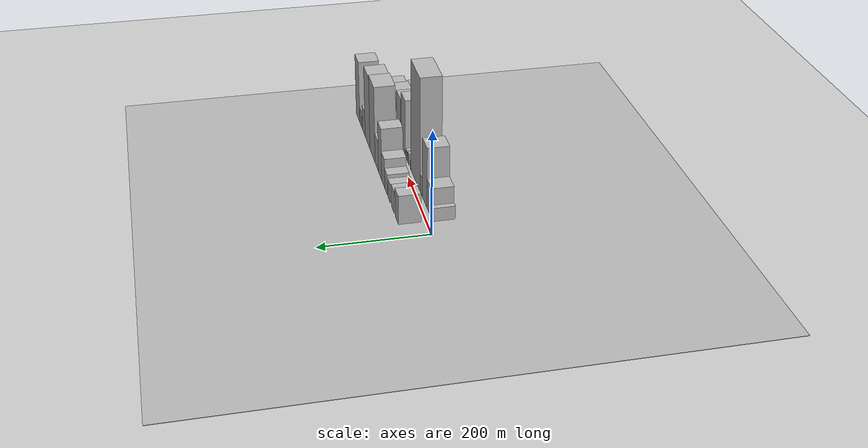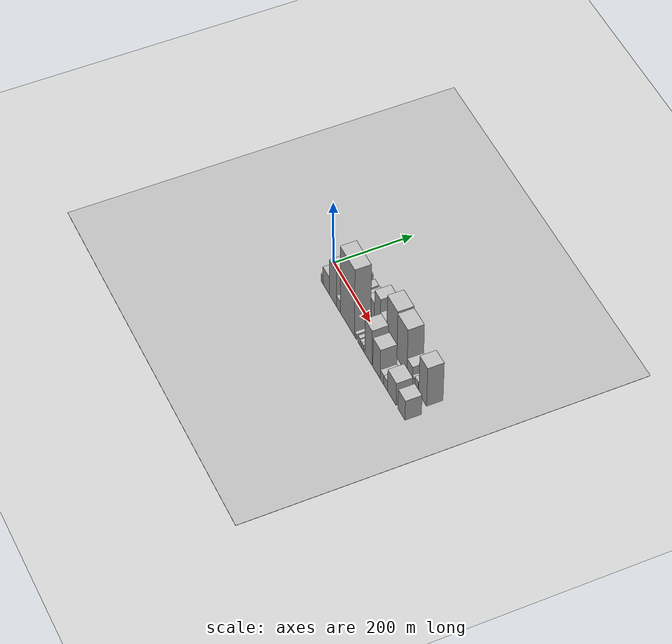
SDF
<?xml version="1.0" encoding="utf-8"?>

<sdf version="1.6">

   <world name="default">

      <gui fullscreen="0">

         <camera name="user_camera">

            <pose>-15 0 4.57585 0 0 0</pose>

            <view_controller>orbit</view_controller>

         </camera>

      </gui>

      <scene>

         <sky>

           <clouds>

             <speed>12</speed>

           </clouds>

         </sky>

         <ambient>0.4 0.4 0.4 1</ambient>

         <background>0.7 0.7 0.7 1</background>

         <shadows>1</shadows>

      </scene>

      <gravity>0 0 -9.8066</gravity>

      <magnetic_field>6e-06 2.3e-05 -4.2e-05</magnetic_field>

      <physics default="0" name="default_physics" type="ode">

         <ode>

            <solver>

               <type>quick</type>

               <iters>10</iters>

               <sor>1.0</sor>

               <use_dynamic_moi_rescaling>0</use_dynamic_moi_rescaling>

            </solver>

            <constraints>

               <cfm>0</cfm>

               <erp>0.2</erp>

               <contact_max_correcting_vel>100</contact_max_correcting_vel>

               <contact_surface_layer>0.001</contact_surface_layer>

            </constraints>

         </ode>

         <max_step_size>0.004</max_step_size>

         <real_time_factor>1</real_time_factor>

         <real_time_update_rate>250</real_time_update_rate>

      </physics>

      <light name="sun" type="directional">

         <cast_shadows>1</cast_shadows>

         <pose>0 0 10 0 0 0</pose>

         <diffuse>0.8 0.8 0.8 1</diffuse>

         <specular>0.2 0.2 0.2 1</specular>

         <attenuation>

            <range>1000</range>

            <constant>0.9</constant>

            <linear>0.01</linear>

            <quadratic>0.001</quadratic>

         </attenuation>

         <direction>-0.5 0.1 -0.9</direction>

      </light>

      <include>

         <name>ground_plane_1</name>

         <uri>model://HANNAS_ground_plane</uri>

         <pose>0 0 0  0 0 0</pose>

      </include>

      <include>

         <name>ground_plane_2</name>

         <uri>model://HANNAS_ground_plane</uri>

         <pose>100 0 0  0 0 0</pose>

      </include>

      <model name="building_1">

         <static>1</static>

         <pose frame="">57.4653 30.0000 0 0.000000 0.000000 1.570796</pose>

         <link name="link">

            <pose frame="">0 0 28.50 0 0 0</pose>

            <collision name="collision">

               <geometry>

                  <box>

                     <size>40.0000 28.9307 57.0000</size>

                  </box>

               </geometry>

               <max_contacts>10</max_contacts>

               <surface>

                  <contact>

                     <ode/>

                  </contact>

                  <bounce/>

                  <friction>

                     <torsional>

                        <ode/>

                     </torsional>

                     <ode/>

                  </friction>

               </surface>

            </collision>

            <visual name="visual">

               <cast_shadows>0</cast_shadows>

               <geometry>

                  <box>

                     <size>40.0000 28.9307 57.0000</size>

                  </box>

               </geometry>

               <material>

                  <script>

                     <uri>model://HANNAS_wall/materials/scripts</uri>

                     <uri>model://HANNAS_wall/materials/textures</uri>

                     <name>vrc/HANNAS_wall</name>

                  </script>

               </material>

            </visual>

            <self_collide>0</self_collide>

            <enable_wind>0</enable_wind>

            <kinematic>0</kinematic>

         </link>

      </model>

      <model name="building_2">

         <static>1</static>

         <pose frame="">93.8276 30.0000 0 0.000000 0.000000 1.570796</pose>

         <link name="link">

            <pose frame="">0 0 22.50 0 0 0</pose>

            <collision name="collision">

               <geometry>

                  <box>

                     <size>40.0000 25.7937 45.0000</size>

                  </box>

               </geometry>

               <max_contacts>10</max_contacts>

               <surface>

                  <contact>

                     <ode/>

                  </contact>

                  <bounce/>

                  <friction>

                     <torsional>

                        <ode/>

                     </torsional>

                     <ode/>

                  </friction>

               </surface>

            </collision>

            <visual name="visual">

               <cast_shadows>0</cast_shadows>

               <geometry>

                  <box>

                     <size>40.0000 25.7937 45.0000</size>

                  </box>

               </geometry>

               <material>

                  <script>

                     <uri>model://HANNAS_wall/materials/scripts</uri>

                     <uri>model://HANNAS_wall/materials/textures</uri>

                     <name>vrc/HANNAS_wall</name>

                  </script>

               </material>

            </visual>

            <self_collide>0</self_collide>

            <enable_wind>0</enable_wind>

            <kinematic>0</kinematic>

         </link>

      </model>

      <model name="building_3">

         <static>1</static>

         <pose frame="">127.2322 30.0000 0 0.000000 0.000000 1.570796</pose>

         <link name="link">

            <pose frame="">0 0 19.50 0 0 0</pose>

            <collision name="collision">

               <geometry>

                  <box>

                     <size>40.0000 21.0156 39.0000</size>

                  </box>

               </geometry>

               <max_contacts>10</max_contacts>

               <surface>

                  <contact>

                     <ode/>

                  </contact>

                  <bounce/>

                  <friction>

                     <torsional>

                        <ode/>

                     </torsional>

                     <ode/>

                  </friction>

               </surface>

            </collision>

            <visual name="visual">

               <cast_shadows>0</cast_shadows>

               <geometry>

                  <box>

                     <size>40.0000 21.0156 39.0000</size>

                  </box>

               </geometry>

               <material>

                  <script>

                     <uri>model://HANNAS_wall/materials/scripts</uri>

                     <uri>model://HANNAS_wall/materials/textures</uri>

                     <name>vrc/HANNAS_wall</name>

                  </script>

               </material>

            </visual>

            <self_collide>0</self_collide>

            <enable_wind>0</enable_wind>

            <kinematic>0</kinematic>

         </link>

      </model>

      <model name="building_4">

         <static>1</static>

         <pose frame="">157.1535 30.0000 0 0.000000 0.000000 1.570796</pose>

         <link name="link">

            <pose frame="">0 0 21.00 0 0 0</pose>

            <collision name="collision">

               <geometry>

                  <box>

                     <size>40.0000 24.8269 42.0000</size>

                  </box>

               </geometry>

               <max_contacts>10</max_contacts>

               <surface>

                  <contact>

                     <ode/>

                  </contact>

                  <bounce/>

                  <friction>

                     <torsional>

                        <ode/>

                     </torsional>

                     <ode/>

                  </friction>

               </surface>

            </collision>

            <visual name="visual">

               <cast_shadows>0</cast_shadows>

               <geometry>

                  <box>

                     <size>40.0000 24.8269 42.0000</size>

                  </box>

               </geometry>

               <material>

                  <script>

                     <uri>model://HANNAS_wall/materials/scripts</uri>

                     <uri>model://HANNAS_wall/materials/textures</uri>

                     <name>vrc/HANNAS_wall</name>

                  </script>

               </material>

            </visual>

            <self_collide>0</self_collide>

            <enable_wind>0</enable_wind>

            <kinematic>0</kinematic>

         </link>

      </model>

      <model name="building_5">

         <static>1</static>

         <pose frame="">184.8793 30.0000 0 0.000000 0.000000 1.570796</pose>

         <link name="link">

            <pose frame="">0 0 30.00 0 0 0</pose>

            <collision name="collision">

               <geometry>

                  <box>

                     <size>40.0000 30.6247 60.0000</size>

                  </box>

               </geometry>

               <max_contacts>10</max_contacts>

               <surface>

                  <contact>

                     <ode/>

                  </contact>

                  <bounce/>

                  <friction>

                     <torsional>

                        <ode/>

                     </torsional>

                     <ode/>

                  </friction>

               </surface>

            </collision>

            <visual name="visual">

               <cast_shadows>0</cast_shadows>

               <geometry>

                  <box>

                     <size>40.0000 30.6247 60.0000</size>

                  </box>

               </geometry>

               <material>

                  <script>

                     <uri>model://HANNAS_wall/materials/scripts</uri>

                     <uri>model://HANNAS_wall/materials/textures</uri>

                     <name>vrc/HANNAS_wall</name>

                  </script>

               </material>

            </visual>

            <self_collide>0</self_collide>

            <enable_wind>0</enable_wind>

            <kinematic>0</kinematic>

         </link>

      </model>

      <model name="building_6">

         <static>1</static>

         <pose frame="">215.9763 30.0000 0 0.000000 0.000000 1.570796</pose>

         <link name="link">

            <pose frame="">0 0 52.50 0 0 0</pose>

            <collision name="collision">

               <geometry>

                  <box>

                     <size>40.0000 31.5693 105.0000</size>

                  </box>

               </geometry>

               <max_contacts>10</max_contacts>

               <surface>

                  <contact>

                     <ode/>

                  </contact>

                  <bounce/>

                  <friction>

                     <torsional>

                        <ode/>

                     </torsional>

                     <ode/>

                  </friction>

               </surface>

            </collision>

            <visual name="visual">

               <cast_shadows>0</cast_shadows>

               <geometry>

                  <box>

                     <size>40.0000 31.5693 105.0000</size>

                  </box>

               </geometry>

               <material>

                  <script>

                     <uri>model://HANNAS_wall/materials/scripts</uri>

                     <uri>model://HANNAS_wall/materials/textures</uri>

                     <name>vrc/HANNAS_wall</name>

                  </script>

               </material>

            </visual>

            <self_collide>0</self_collide>

            <enable_wind>0</enable_wind>

            <kinematic>0</kinematic>

         </link>

      </model>

      <model name="building_7">

         <static>1</static>

         <pose frame="">248.9823 30.0000 0 0.000000 0.000000 1.570796</pose>

         <link name="link">

            <pose frame="">0 0 31.50 0 0 0</pose>

            <collision name="collision">

               <geometry>

                  <box>

                     <size>40.0000 34.4428 63.0000</size>

                  </box>

               </geometry>

               <max_contacts>10</max_contacts>

               <surface>

                  <contact>

                     <ode/>

                  </contact>

                  <bounce/>

                  <friction>

                     <torsional>

                        <ode/>

                     </torsional>

                     <ode/>

                  </friction>

               </surface>

            </collision>

            <visual name="visual">

               <cast_shadows>0</cast_shadows>

               <geometry>

                  <box>

                     <size>40.0000 34.4428 63.0000</size>

                  </box>

               </geometry>

               <material>

                  <script>

                     <uri>model://HANNAS_wall/materials/scripts</uri>

                     <uri>model://HANNAS_wall/materials/textures</uri>

                     <name>vrc/HANNAS_wall</name>

                  </script>

               </material>

            </visual>

            <self_collide>0</self_collide>

            <enable_wind>0</enable_wind>

            <kinematic>0</kinematic>

         </link>

      </model>

      <model name="building_8">

         <static>1</static>

         <pose frame="">292.9876 30.0000 0 0.000000 0.000000 1.570796</pose>

         <link name="link">

            <pose frame="">0 0 78.00 0 0 0</pose>

            <collision name="collision">

               <geometry>

                  <box>

                     <size>40.0000 53.5677 156.0000</size>

                  </box>

               </geometry>

               <max_contacts>10</max_contacts>

               <surface>

                  <contact>

                     <ode/>

                  </contact>

                  <bounce/>

                  <friction>

                     <torsional>

                        <ode/>

                     </torsional>

                     <ode/>

                  </friction>

               </surface>

            </collision>

            <visual name="visual">

               <cast_shadows>0</cast_shadows>

               <geometry>

                  <box>

                     <size>40.0000 53.5677 156.0000</size>

                  </box>

               </geometry>

               <material>

                  <script>

                     <uri>model://HANNAS_wall/materials/scripts</uri>

                     <uri>model://HANNAS_wall/materials/textures</uri>

                     <name>vrc/HANNAS_wall</name>

                  </script>

               </material>

            </visual>

            <self_collide>0</self_collide>

            <enable_wind>0</enable_wind>

            <kinematic>0</kinematic>

         </link>

      </model>

      <model name="building_9">

         <static>1</static>

         <pose frame="">346.0546 30.0000 0 0.000000 0.000000 1.570796</pose>

         <link name="link">

            <pose frame="">0 0 75.00 0 0 0</pose>

            <collision name="collision">

               <geometry>

                  <box>

                     <size>40.0000 52.5664 150.0000</size>

                  </box>

               </geometry>

               <max_contacts>10</max_contacts>

               <surface>

                  <contact>

                     <ode/>

                  </contact>

                  <bounce/>

                  <friction>

                     <torsional>

                        <ode/>

                     </torsional>

                     <ode/>

                  </friction>

               </surface>

            </collision>

            <visual name="visual">

               <cast_shadows>0</cast_shadows>

               <geometry>

                  <box>

                     <size>40.0000 52.5664 150.0000</size>

                  </box>

               </geometry>

               <material>

                  <script>

                     <uri>model://HANNAS_wall/materials/scripts</uri>

                     <uri>model://HANNAS_wall/materials/textures</uri>

                     <name>vrc/HANNAS_wall</name>

                  </script>

               </material>

            </visual>

            <self_collide>0</self_collide>

            <enable_wind>0</enable_wind>

            <kinematic>0</kinematic>

         </link>

      </model>

      <model name="building_10">

         <static>1</static>

         <pose frame="">386.1400 30.0000 0 0.000000 0.000000 1.570796</pose>

         <link name="link">

            <pose frame="">0 0 27.00 0 0 0</pose>

            <collision name="collision">

               <geometry>

                  <box>

                     <size>40.0000 27.6044 54.0000</size>

                  </box>

               </geometry>

               <max_contacts>10</max_contacts>

               <surface>

                  <contact>

                     <ode/>

                  </contact>

                  <bounce/>

                  <friction>

                     <torsional>

                        <ode/>

                     </torsional>

                     <ode/>

                  </friction>

               </surface>

            </collision>

            <visual name="visual">

               <cast_shadows>0</cast_shadows>

               <geometry>

                  <box>

                     <size>40.0000 27.6044 54.0000</size>

                  </box>

               </geometry>

               <material>

                  <script>

                     <uri>model://HANNAS_wall/materials/scripts</uri>

                     <uri>model://HANNAS_wall/materials/textures</uri>

                     <name>vrc/HANNAS_wall</name>

                  </script>

               </material>

            </visual>

            <self_collide>0</self_collide>

            <enable_wind>0</enable_wind>

            <kinematic>0</kinematic>

         </link>

      </model>

      <model name="building_11">

         <static>1</static>

         <pose frame="">405.8643 30.0000 0 0.000000 0.000000 1.570796</pose>

         <link name="link">

            <pose frame="">0 0 13.50 0 0 0</pose>

            <collision name="collision">

               <geometry>

                  <box>

                     <size>40.0000 11.8440 27.0000</size>

                  </box>

               </geometry>

               <max_contacts>10</max_contacts>

               <surface>

                  <contact>

                     <ode/>

                  </contact>

                  <bounce/>

                  <friction>

                     <torsional>

                        <ode/>

                     </torsional>

                     <ode/>

                  </friction>

               </surface>

            </collision>

            <visual name="visual">

               <cast_shadows>0</cast_shadows>

               <geometry>

                  <box>

                     <size>40.0000 11.8440 27.0000</size>

                  </box>

               </geometry>

               <material>

                  <script>

                     <uri>model://HANNAS_wall/materials/scripts</uri>

                     <uri>model://HANNAS_wall/materials/textures</uri>

                     <name>vrc/HANNAS_wall</name>

                  </script>

               </material>

            </visual>

            <self_collide>0</self_collide>

            <enable_wind>0</enable_wind>

            <kinematic>0</kinematic>

         </link>

      </model>

      <model name="building_12">

         <static>1</static>

         <pose frame="">421.0274 30.0000 0 0.000000 0.000000 1.570796</pose>

         <link name="link">

            <pose frame="">0 0 18.00 0 0 0</pose>

            <collision name="collision">

               <geometry>

                  <box>

                     <size>40.0000 18.4822 36.0000</size>

                  </box>

               </geometry>

               <max_contacts>10</max_contacts>

               <surface>

                  <contact>

                     <ode/>

                  </contact>

                  <bounce/>

                  <friction>

                     <torsional>

                        <ode/>

                     </torsional>

                     <ode/>

                  </friction>

               </surface>

            </collision>

            <visual name="visual">

               <cast_shadows>0</cast_shadows>

               <geometry>

                  <box>

                     <size>40.0000 18.4822 36.0000</size>

                  </box>

               </geometry>

               <material>

                  <script>

                     <uri>model://HANNAS_wall/materials/scripts</uri>

                     <uri>model://HANNAS_wall/materials/textures</uri>

                     <name>vrc/HANNAS_wall</name>

                  </script>

               </material>

            </visual>

            <self_collide>0</self_collide>

            <enable_wind>0</enable_wind>

            <kinematic>0</kinematic>

         </link>

      </model>

      <model name="building_13">

         <static>1</static>

         <pose frame="">453.2611 30.0000 0 0.000000 0.000000 1.570796</pose>

         <link name="link">

            <pose frame="">0 0 64.50 0 0 0</pose>

            <collision name="collision">

               <geometry>

                  <box>

                     <size>40.0000 39.9852 129.0000</size>

                  </box>

               </geometry>

               <max_contacts>10</max_contacts>

               <surface>

                  <contact>

                     <ode/>

                  </contact>

                  <bounce/>

                  <friction>

                     <torsional>

                        <ode/>

                     </torsional>

                     <ode/>

                  </friction>

               </surface>

            </collision>

            <visual name="visual">

               <cast_shadows>0</cast_shadows>

               <geometry>

                  <box>

                     <size>40.0000 39.9852 129.0000</size>

                  </box>

               </geometry>

               <material>

                  <script>

                     <uri>model://HANNAS_wall/materials/scripts</uri>

                     <uri>model://HANNAS_wall/materials/textures</uri>

                     <name>vrc/HANNAS_wall</name>

                  </script>

               </material>

            </visual>

            <self_collide>0</self_collide>

            <enable_wind>0</enable_wind>

            <kinematic>0</kinematic>

         </link>

      </model>

      <model name="building_14">

         <static>1</static>

         <pose frame="">45.4942 -30.0000 0 0.000000 0.000000 1.570796</pose>

         <link name="link">

            <pose frame="">0 0 13.50 0 0 0</pose>

            <collision name="collision">

               <geometry>

                  <box>

                     <size>40.0000 10.9884 27.0000</size>

                  </box>

               </geometry>

               <max_contacts>10</max_contacts>

               <surface>

                  <contact>

                     <ode/>

                  </contact>

                  <bounce/>

                  <friction>

                     <torsional>

                        <ode/>

                     </torsional>

                     <ode/>

                  </friction>

               </surface>

            </collision>

            <visual name="visual">

               <cast_shadows>0</cast_shadows>

               <geometry>

                  <box>

                     <size>40.0000 10.9884 27.0000</size>

                  </box>

               </geometry>

               <material>

                  <script>

                     <uri>model://HANNAS_wall/materials/scripts</uri>

                     <uri>model://HANNAS_wall/materials/textures</uri>

                     <name>vrc/HANNAS_wall</name>

                  </script>

               </material>

            </visual>

            <self_collide>0</self_collide>

            <enable_wind>0</enable_wind>

            <kinematic>0</kinematic>

         </link>

      </model>

      <model name="building_15">

         <static>1</static>

         <pose frame="">68.7588 -30.0000 0 0.000000 0.000000 1.570796</pose>

         <link name="link">

            <pose frame="">0 0 30.00 0 0 0</pose>

            <collision name="collision">

               <geometry>

                  <box>

                     <size>40.0000 35.5408 60.0000</size>

                  </box>

               </geometry>

               <max_contacts>10</max_contacts>

               <surface>

                  <contact>

                     <ode/>

                  </contact>

                  <bounce/>

                  <friction>

                     <torsional>

                        <ode/>

                     </torsional>

                     <ode/>

                  </friction>

               </surface>

            </collision>

            <visual name="visual">

               <cast_shadows>0</cast_shadows>

               <geometry>

                  <box>

                     <size>40.0000 35.5408 60.0000</size>

                  </box>

               </geometry>

               <material>

                  <script>

                     <uri>model://HANNAS_wall/materials/scripts</uri>

                     <uri>model://HANNAS_wall/materials/textures</uri>

                     <name>vrc/HANNAS_wall</name>

                  </script>

               </material>

            </visual>

            <self_collide>0</self_collide>

            <enable_wind>0</enable_wind>

            <kinematic>0</kinematic>

         </link>

      </model>

      <model name="building_16">

         <static>1</static>

         <pose frame="">106.2109 -30.0000 0 0.000000 0.000000 1.570796</pose>

         <link name="link">

            <pose frame="">0 0 60.00 0 0 0</pose>

            <collision name="collision">

               <geometry>

                  <box>

                     <size>40.0000 39.3634 120.0000</size>

                  </box>

               </geometry>

               <max_contacts>10</max_contacts>

               <surface>

                  <contact>

                     <ode/>

                  </contact>

                  <bounce/>

                  <friction>

                     <torsional>

                        <ode/>

                     </torsional>

                     <ode/>

                  </friction>

               </surface>

            </collision>

            <visual name="visual">

               <cast_shadows>0</cast_shadows>

               <geometry>

                  <box>

                     <size>40.0000 39.3634 120.0000</size>

                  </box>

               </geometry>

               <material>

                  <script>

                     <uri>model://HANNAS_wall/materials/scripts</uri>

                     <uri>model://HANNAS_wall/materials/textures</uri>

                     <name>vrc/HANNAS_wall</name>

                  </script>

               </material>

            </visual>

            <self_collide>0</self_collide>

            <enable_wind>0</enable_wind>

            <kinematic>0</kinematic>

         </link>

      </model>

      <model name="building_17">

         <static>1</static>

         <pose frame="">136.2057 -30.0000 0 0.000000 0.000000 1.570796</pose>

         <link name="link">

            <pose frame="">0 0 19.50 0 0 0</pose>

            <collision name="collision">

               <geometry>

                  <box>

                     <size>40.0000 20.6261 39.0000</size>

                  </box>

               </geometry>

               <max_contacts>10</max_contacts>

               <surface>

                  <contact>

                     <ode/>

                  </contact>

                  <bounce/>

                  <friction>

                     <torsional>

                        <ode/>

                     </torsional>

                     <ode/>

                  </friction>

               </surface>

            </collision>

            <visual name="visual">

               <cast_shadows>0</cast_shadows>

               <geometry>

                  <box>

                     <size>40.0000 20.6261 39.0000</size>

                  </box>

               </geometry>

               <material>

                  <script>

                     <uri>model://HANNAS_wall/materials/scripts</uri>

                     <uri>model://HANNAS_wall/materials/textures</uri>

                     <name>vrc/HANNAS_wall</name>

                  </script>

               </material>

            </visual>

            <self_collide>0</self_collide>

            <enable_wind>0</enable_wind>

            <kinematic>0</kinematic>

         </link>

      </model>

      <model name="building_18">

         <static>1</static>

         <pose frame="">185.7027 -30.0000 0 0.000000 0.000000 1.570796</pose>

         <link name="link">

            <pose frame="">0 0 112.50 0 0 0</pose>

            <collision name="collision">

               <geometry>

                  <box>

                     <size>40.0000 78.3680 225.0000</size>

                  </box>

               </geometry>

               <max_contacts>10</max_contacts>

               <surface>

                  <contact>

                     <ode/>

                  </contact>

                  <bounce/>

                  <friction>

                     <torsional>

                        <ode/>

                     </torsional>

                     <ode/>

                  </friction>

               </surface>

            </collision>

            <visual name="visual">

               <cast_shadows>0</cast_shadows>

               <geometry>

                  <box>

                     <size>40.0000 78.3680 225.0000</size>

                  </box>

               </geometry>

               <material>

                  <script>

                     <uri>model://HANNAS_wall/materials/scripts</uri>

                     <uri>model://HANNAS_wall/materials/textures</uri>

                     <name>vrc/HANNAS_wall</name>

                  </script>

               </material>

            </visual>

            <self_collide>0</self_collide>

            <enable_wind>0</enable_wind>

            <kinematic>0</kinematic>

         </link>

      </model>

      <model name="building_19">

         <static>1</static>

         <pose frame="">229.2558 -30.0000 0 0.000000 0.000000 1.570796</pose>

         <link name="link">

            <pose frame="">0 0 9.00 0 0 0</pose>

            <collision name="collision">

               <geometry>

                  <box>

                     <size>40.0000 8.7381 18.0000</size>

                  </box>

               </geometry>

               <max_contacts>10</max_contacts>

               <surface>

                  <contact>

                     <ode/>

                  </contact>

                  <bounce/>

                  <friction>

                     <torsional>

                        <ode/>

                     </torsional>

                     <ode/>

                  </friction>

               </surface>

            </collision>

            <visual name="visual">

               <cast_shadows>0</cast_shadows>

               <geometry>

                  <box>

                     <size>40.0000 8.7381 18.0000</size>

                  </box>

               </geometry>

               <material>

                  <script>

                     <uri>model://HANNAS_wall/materials/scripts</uri>

                     <uri>model://HANNAS_wall/materials/textures</uri>

                     <name>vrc/HANNAS_wall</name>

                  </script>

               </material>

            </visual>

            <self_collide>0</self_collide>

            <enable_wind>0</enable_wind>

            <kinematic>0</kinematic>

         </link>

      </model>

      <model name="building_20">

         <static>1</static>

         <pose frame="">247.9548 -30.0000 0 0.000000 0.000000 1.570796</pose>

         <link name="link">

            <pose frame="">0 0 12.00 0 0 0</pose>

            <collision name="collision">

               <geometry>

                  <box>

                     <size>40.0000 10.6600 24.0000</size>

                  </box>

               </geometry>

               <max_contacts>10</max_contacts>

               <surface>

                  <contact>

                     <ode/>

                  </contact>

                  <bounce/>

                  <friction>

                     <torsional>

                        <ode/>

                     </torsional>

                     <ode/>

                  </friction>

               </surface>

            </collision>

            <visual name="visual">

               <cast_shadows>0</cast_shadows>

               <geometry>

                  <box>

                     <size>40.0000 10.6600 24.0000</size>

                  </box>

               </geometry>

               <material>

                  <script>

                     <uri>model://HANNAS_wall/materials/scripts</uri>

                     <uri>model://HANNAS_wall/materials/textures</uri>

                     <name>vrc/HANNAS_wall</name>

                  </script>

               </material>

            </visual>

            <self_collide>0</self_collide>

            <enable_wind>0</enable_wind>

            <kinematic>0</kinematic>

         </link>

      </model>

      <model name="building_21">

         <static>1</static>

         <pose frame="">258.0757 -30.0000 0 0.000000 0.000000 1.570796</pose>

         <link name="link">

            <pose frame="">0 0 10.50 0 0 0</pose>

            <collision name="collision">

               <geometry>

                  <box>

                     <size>40.0000 9.5817 21.0000</size>

                  </box>

               </geometry>

               <max_contacts>10</max_contacts>

               <surface>

                  <contact>

                     <ode/>

                  </contact>

                  <bounce/>

                  <friction>

                     <torsional>

                        <ode/>

                     </torsional>

                     <ode/>

                  </friction>

               </surface>

            </collision>

            <visual name="visual">

               <cast_shadows>0</cast_shadows>

               <geometry>

                  <box>

                     <size>40.0000 9.5817 21.0000</size>

                  </box>

               </geometry>

               <material>

                  <script>

                     <uri>model://HANNAS_wall/materials/scripts</uri>

                     <uri>model://HANNAS_wall/materials/textures</uri>

                     <name>vrc/HANNAS_wall</name>

                  </script>

               </material>

            </visual>

            <self_collide>0</self_collide>

            <enable_wind>0</enable_wind>

            <kinematic>0</kinematic>

         </link>

      </model>

      <model name="building_22">

         <static>1</static>

         <pose frame="">267.4783 -30.0000 0 0.000000 0.000000 1.570796</pose>

         <link name="link">

            <pose frame="">0 0 10.50 0 0 0</pose>

            <collision name="collision">

               <geometry>

                  <box>

                     <size>40.0000 9.2234 21.0000</size>

                  </box>

               </geometry>

               <max_contacts>10</max_contacts>

               <surface>

                  <contact>

                     <ode/>

                  </contact>

                  <bounce/>

                  <friction>

                     <torsional>

                        <ode/>

                     </torsional>

                     <ode/>

                  </friction>

               </surface>

            </collision>

            <visual name="visual">

               <cast_shadows>0</cast_shadows>

               <geometry>

                  <box>

                     <size>40.0000 9.2234 21.0000</size>

                  </box>

               </geometry>

               <material>

                  <script>

                     <uri>model://HANNAS_wall/materials/scripts</uri>

                     <uri>model://HANNAS_wall/materials/textures</uri>

                     <name>vrc/HANNAS_wall</name>

                  </script>

               </material>

            </visual>

            <self_collide>0</self_collide>

            <enable_wind>0</enable_wind>

            <kinematic>0</kinematic>

         </link>

      </model>

      <model name="building_23">

         <static>1</static>

         <pose frame="">275.1479 -30.0000 0 0.000000 0.000000 1.570796</pose>

         <link name="link">

            <pose frame="">0 0 7.50 0 0 0</pose>

            <collision name="collision">

               <geometry>

                  <box>

                     <size>40.0000 6.1158 15.0000</size>

                  </box>

               </geometry>

               <max_contacts>10</max_contacts>

               <surface>

                  <contact>

                     <ode/>

                  </contact>

                  <bounce/>

                  <friction>

                     <torsional>

                        <ode/>

                     </torsional>

                     <ode/>

                  </friction>

               </surface>

            </collision>

            <visual name="visual">

               <cast_shadows>0</cast_shadows>

               <geometry>

                  <box>

                     <size>40.0000 6.1158 15.0000</size>

                  </box>

               </geometry>

               <material>

                  <script>

                     <uri>model://HANNAS_wall/materials/scripts</uri>

                     <uri>model://HANNAS_wall/materials/textures</uri>

                     <name>vrc/HANNAS_wall</name>

                  </script>

               </material>

            </visual>

            <self_collide>0</self_collide>

            <enable_wind>0</enable_wind>

            <kinematic>0</kinematic>

         </link>

      </model>

      <model name="building_24">

         <static>1</static>

         <pose frame="">297.4063 -30.0000 0 0.000000 0.000000 1.570796</pose>

         <link name="link">

            <pose frame="">0 0 58.50 0 0 0</pose>

            <collision name="collision">

               <geometry>

                  <box>

                     <size>40.0000 38.4011 117.0000</size>

                  </box>

               </geometry>

               <max_contacts>10</max_contacts>

               <surface>

                  <contact>

                     <ode/>

                  </contact>

                  <bounce/>

                  <friction>

                     <torsional>

                        <ode/>

                     </torsional>

                     <ode/>

                  </friction>

               </surface>

            </collision>

            <visual name="visual">

               <cast_shadows>0</cast_shadows>

               <geometry>

                  <box>

                     <size>40.0000 38.4011 117.0000</size>

                  </box>

               </geometry>

               <material>

                  <script>

                     <uri>model://HANNAS_wall/materials/scripts</uri>

                     <uri>model://HANNAS_wall/materials/textures</uri>

                     <name>vrc/HANNAS_wall</name>

                  </script>

               </material>

            </visual>

            <self_collide>0</self_collide>

            <enable_wind>0</enable_wind>

            <kinematic>0</kinematic>

         </link>

      </model>

      <model name="building_25">

         <static>1</static>

         <pose frame="">341.2876 -30.0000 0 0.000000 0.000000 1.570796</pose>

         <link name="link">

            <pose frame="">0 0 49.50 0 0 0</pose>

            <collision name="collision">

               <geometry>

                  <box>

                     <size>40.0000 39.3615 99.0000</size>

                  </box>

               </geometry>

               <max_contacts>10</max_contacts>

               <surface>

                  <contact>

                     <ode/>

                  </contact>

                  <bounce/>

                  <friction>

                     <torsional>

                        <ode/>

                     </torsional>

                     <ode/>

                  </friction>

               </surface>

            </collision>

            <visual name="visual">

               <cast_shadows>0</cast_shadows>

               <geometry>

                  <box>

                     <size>40.0000 39.3615 99.0000</size>

                  </box>

               </geometry>

               <material>

                  <script>

                     <uri>model://HANNAS_wall/materials/scripts</uri>

                     <uri>model://HANNAS_wall/materials/textures</uri>

                     <name>vrc/HANNAS_wall</name>

                  </script>

               </material>

            </visual>

            <self_collide>0</self_collide>

            <enable_wind>0</enable_wind>

            <kinematic>0</kinematic>

         </link>

      </model>

      <model name="building_26">

         <static>1</static>

         <pose frame="">370.0428 -30.0000 0 0.000000 0.000000 1.570796</pose>

         <link name="link">

            <pose frame="">0 0 16.50 0 0 0</pose>

            <collision name="collision">

               <geometry>

                  <box>

                     <size>40.0000 18.1487 33.0000</size>

                  </box>

               </geometry>

               <max_contacts>10</max_contacts>

               <surface>

                  <contact>

                     <ode/>

                  </contact>

                  <bounce/>

                  <friction>

                     <torsional>

                        <ode/>

                     </torsional>

                     <ode/>

                  </friction>

               </surface>

            </collision>

            <visual name="visual">

               <cast_shadows>0</cast_shadows>

               <geometry>

                  <box>

                     <size>40.0000 18.1487 33.0000</size>

                  </box>

               </geometry>

               <material>

                  <script>

                     <uri>model://HANNAS_wall/materials/scripts</uri>

                     <uri>model://HANNAS_wall/materials/textures</uri>

                     <name>vrc/HANNAS_wall</name>

                  </script>

               </material>

            </visual>

            <self_collide>0</self_collide>

            <enable_wind>0</enable_wind>

            <kinematic>0</kinematic>

         </link>

      </model>

      <model name="building_27">

         <static>1</static>

         <pose frame="">388.8903 -30.0000 0 0.000000 0.000000 1.570796</pose>

         <link name="link">

            <pose frame="">0 0 16.50 0 0 0</pose>

            <collision name="collision">

               <geometry>

                  <box>

                     <size>40.0000 19.5464 33.0000</size>

                  </box>

               </geometry>

               <max_contacts>10</max_contacts>

               <surface>

                  <contact>

                     <ode/>

                  </contact>

                  <bounce/>

                  <friction>

                     <torsional>

                        <ode/>

                     </torsional>

                     <ode/>

                  </friction>

               </surface>

            </collision>

            <visual name="visual">

               <cast_shadows>0</cast_shadows>

               <geometry>

                  <box>

                     <size>40.0000 19.5464 33.0000</size>

                  </box>

               </geometry>

               <material>

                  <script>

                     <uri>model://HANNAS_wall/materials/scripts</uri>

                     <uri>model://HANNAS_wall/materials/textures</uri>

                     <name>vrc/HANNAS_wall</name>

                  </script>

               </material>

            </visual>

            <self_collide>0</self_collide>

            <enable_wind>0</enable_wind>

            <kinematic>0</kinematic>

         </link>

      </model>

      <model name="building_28">

         <static>1</static>

         <pose frame="">420.8466 -30.0000 0 0.000000 0.000000 1.570796</pose>

         <link name="link">

            <pose frame="">0 0 37.50 0 0 0</pose>

            <collision name="collision">

               <geometry>

                  <box>

                     <size>40.0000 44.3663 75.0000</size>

                  </box>

               </geometry>

               <max_contacts>10</max_contacts>

               <surface>

                  <contact>

                     <ode/>

                  </contact>

                  <bounce/>

                  <friction>

                     <torsional>

                        <ode/>

                     </torsional>

                     <ode/>

                  </friction>

               </surface>

            </collision>

            <visual name="visual">

               <cast_shadows>0</cast_shadows>

               <geometry>

                  <box>

                     <size>40.0000 44.3663 75.0000</size>

                  </box>

               </geometry>

               <material>

                  <script>

                     <uri>model://HANNAS_wall/materials/scripts</uri>

                     <uri>model://HANNAS_wall/materials/textures</uri>

                     <name>vrc/HANNAS_wall</name>

                  </script>

               </material>

            </visual>

            <self_collide>0</self_collide>

            <enable_wind>0</enable_wind>

            <kinematic>0</kinematic>

         </link>

      </model>

      <model name="building_29">

         <static>1</static>

         <pose frame="">471.2513 -30.0000 0 0.000000 0.000000 1.570796</pose>

         <link name="link">

            <pose frame="">0 0 33.00 0 0 0</pose>

            <collision name="collision">

               <geometry>

                  <box>

                     <size>40.0000 36.4431 66.0000</size>

                  </box>

               </geometry>

               <max_contacts>10</max_contacts>

               <surface>

                  <contact>

                     <ode/>

                  </contact>

                  <bounce/>

                  <friction>

                     <torsional>

                        <ode/>

                     </torsional>

                     <ode/>

                  </friction>

               </surface>

            </collision>

            <visual name="visual">

               <cast_shadows>0</cast_shadows>

               <geometry>

                  <box>

                     <size>40.0000 36.4431 66.0000</size>

                  </box>

               </geometry>

               <material>

                  <script>

                     <uri>model://HANNAS_wall/materials/scripts</uri>

                     <uri>model://HANNAS_wall/materials/textures</uri>

                     <name>vrc/HANNAS_wall</name>

                  </script>

               </material>

            </visual>

            <self_collide>0</self_collide>

            <enable_wind>0</enable_wind>

            <kinematic>0</kinematic>

         </link>

      </model>

   </world>

</sdf>

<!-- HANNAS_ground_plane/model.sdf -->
<sdf version="1.4">
<model name="HANNAS_ground_plane">
  <static>true</static>
    <link name="link">
      <collision name="collision">
        <geometry>
          <plane>
            <normal>0 0 1</normal>
            <size>1000 1000</size>
          </plane>
        </geometry>
        <surface>
          <friction>
            <ode>
              <mu>100</mu>
              <mu2>50</mu2>
            </ode>
          </friction>
        </surface>
      </collision>
      <visual name="visual">
        <cast_shadows>false</cast_shadows>
        <geometry>
          <plane>
            <normal>0 0 1</normal>
            <size>1000 1000</size>
          </plane>
        </geometry>
        <material>
          <script>
            <uri>model://HANNAS_ground_plane/materials/scripts/HANNAS_ground_plane.material</uri>
	    <uri>model://HANNAS_ground_plane/materials/textures</uri>
            <name>HANNASGroundPlane/Image</name>
          </script>
        </material>
      </visual>
    </link>
  </model>
</sdf>
